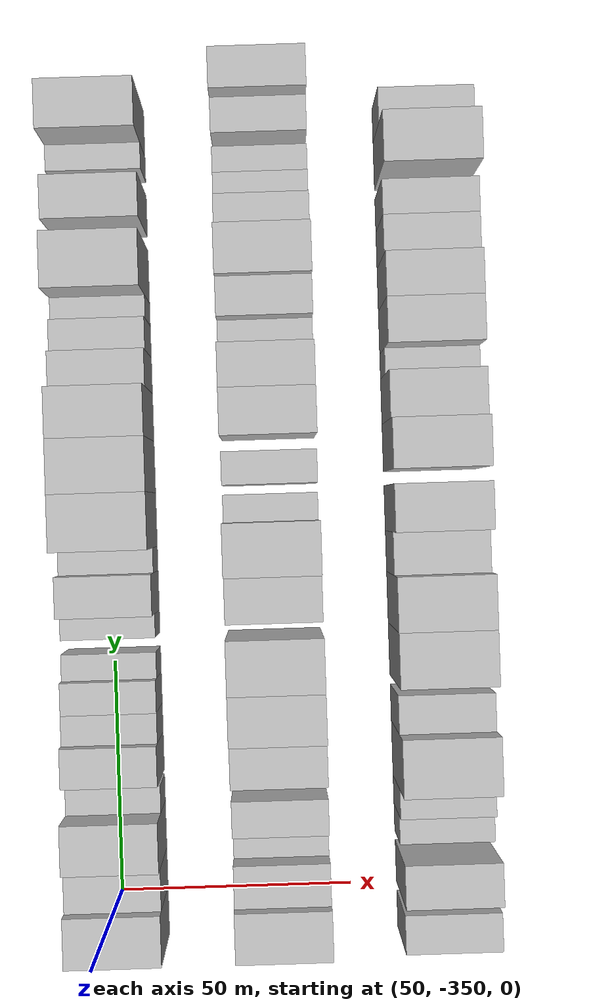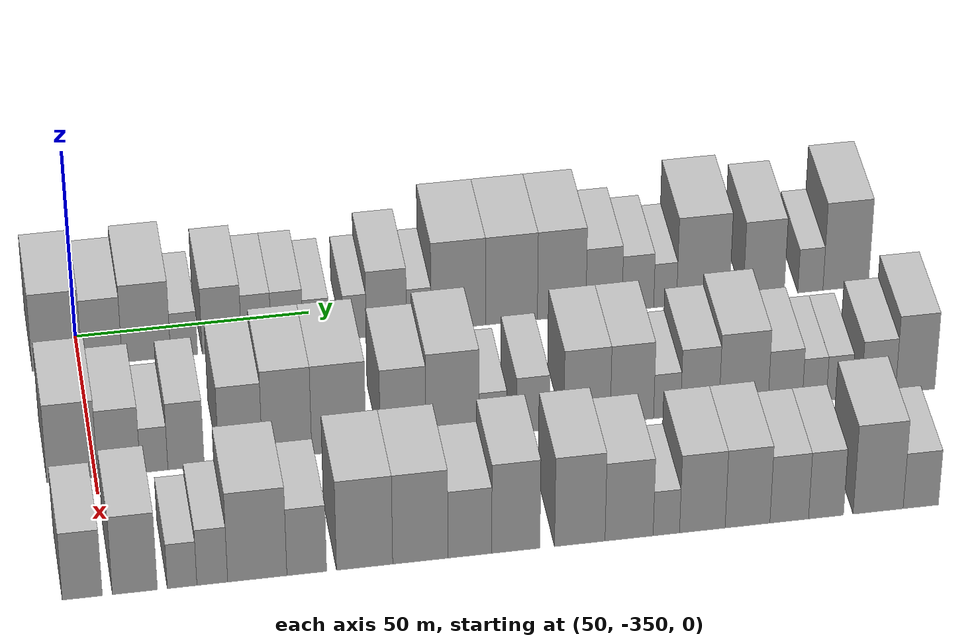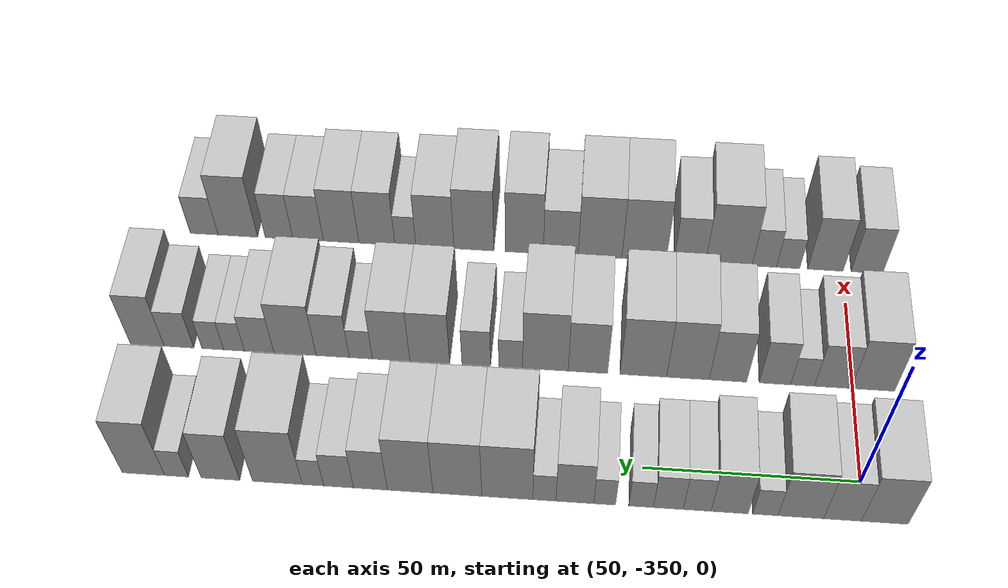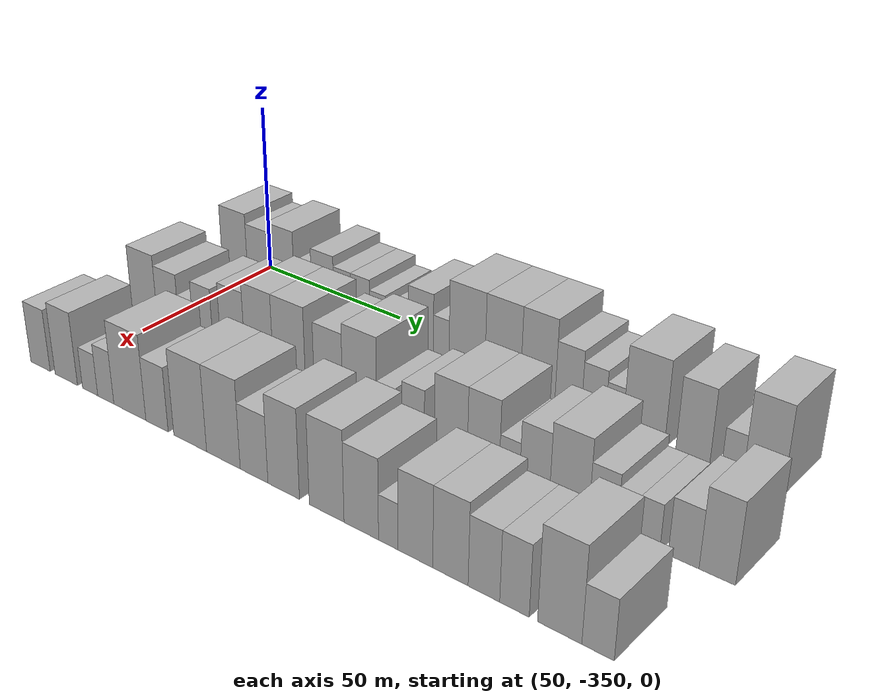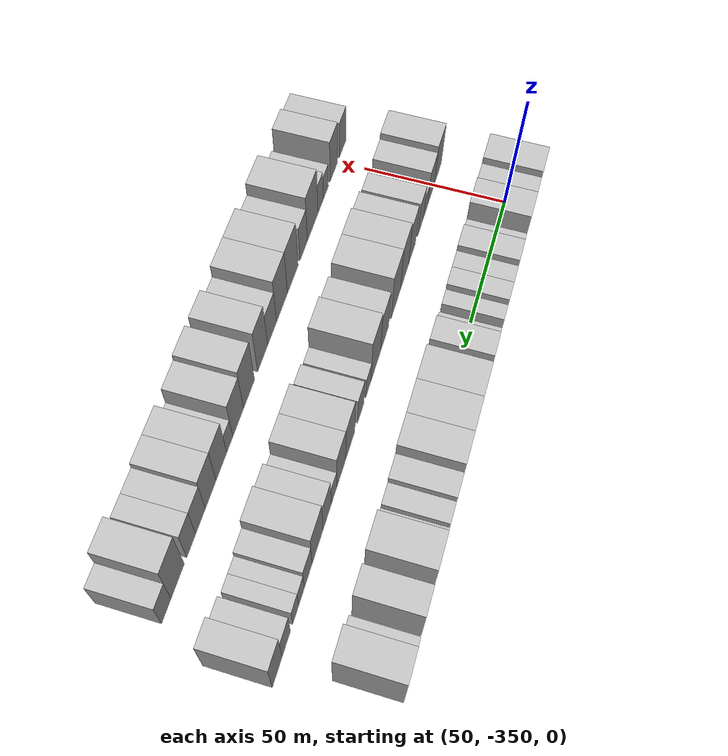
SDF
<sdf version="1.6">
 <world name="default">
  <model name="building_1">
   <static>1</static>
   <pose>50.0000 -354.7508 0 0.000000 0.000000 0.000000</pose>
   <link name="link">
    <pose>0 0 10.50 0 0 0</pose>
    <collision name="collision"><geometry><box><size>20.0000 10.4985 21.0000</size></box></geometry></collision>
    <visual name="visual">
     <cast_shadows>0</cast_shadows>
     <geometry><box><size>20.0000 10.4985 21.0000</size></box></geometry>
     <material>
      <script>
       <uri>model://HANNAS_wall/materials/scripts</uri>
       <uri>model://HANNAS_wall/materials/textures</uri>
       <name>vrc/HANNAS_wall</name>
      </script>
     </material>
    </visual>
   </link>
  </model>
  <model name="building_2">
   <static>1</static>
   <pose>50.0000 -345.2587 0 0.000000 0.000000 0.000000</pose>
   <link name="link">
    <pose>0 0 9.00 0 0 0</pose>
    <collision name="collision"><geometry><box><size>20.0000 8.4857 18.0000</size></box></geometry></collision>
    <visual name="visual">
     <cast_shadows>0</cast_shadows>
     <geometry><box><size>20.0000 8.4857 18.0000</size></box></geometry>
     <material>
      <script>
       <uri>model://HANNAS_wall/materials/scripts</uri>
       <uri>model://HANNAS_wall/materials/textures</uri>
       <name>vrc/HANNAS_wall</name>
      </script>
     </material>
    </visual>
   </link>
  </model>
  <model name="building_3">
   <static>1</static>
   <pose>50.0000 -335.8647 0 0.000000 0.000000 0.000000</pose>
   <link name="link">
    <pose>0 0 10.50 0 0 0</pose>
    <collision name="collision"><geometry><box><size>20.0000 10.3022 21.0000</size></box></geometry></collision>
    <visual name="visual">
     <cast_shadows>0</cast_shadows>
     <geometry><box><size>20.0000 10.3022 21.0000</size></box></geometry>
     <material>
      <script>
       <uri>model://HANNAS_wall/materials/scripts</uri>
       <uri>model://HANNAS_wall/materials/textures</uri>
       <name>vrc/HANNAS_wall</name>
      </script>
     </material>
    </visual>
   </link>
  </model>
  <model name="building_4">
   <static>1</static>
   <pose>50.0000 -327.8538 0 0.000000 0.000000 0.000000</pose>
   <link name="link">
    <pose>0 0 6.00 0 0 0</pose>
    <collision name="collision"><geometry><box><size>20.0000 5.7197 12.0000</size></box></geometry></collision>
    <visual name="visual">
     <cast_shadows>0</cast_shadows>
     <geometry><box><size>20.0000 5.7197 12.0000</size></box></geometry>
     <material>
      <script>
       <uri>model://HANNAS_wall/materials/scripts</uri>
       <uri>model://HANNAS_wall/materials/textures</uri>
       <name>vrc/HANNAS_wall</name>
      </script>
     </material>
    </visual>
   </link>
  </model>
  <model name="building_5">
   <static>1</static>
   <pose>50.0000 -319.8060 0 0.000000 0.000000 0.000000</pose>
   <link name="link">
    <pose>0 0 9.00 0 0 0</pose>
    <collision name="collision"><geometry><box><size>20.0000 8.3759 18.0000</size></box></geometry></collision>
    <visual name="visual">
     <cast_shadows>0</cast_shadows>
     <geometry><box><size>20.0000 8.3759 18.0000</size></box></geometry>
     <material>
      <script>
       <uri>model://HANNAS_wall/materials/scripts</uri>
       <uri>model://HANNAS_wall/materials/textures</uri>
       <name>vrc/HANNAS_wall</name>
      </script>
     </material>
    </visual>
   </link>
  </model>
  <model name="building_6">
   <static>1</static>
   <pose>50.0000 -312.4625 0 0.000000 0.000000 0.000000</pose>
   <link name="link">
    <pose>0 0 7.50 0 0 0</pose>
    <collision name="collision"><geometry><box><size>20.0000 6.3111 15.0000</size></box></geometry></collision>
    <visual name="visual">
     <cast_shadows>0</cast_shadows>
     <geometry><box><size>20.0000 6.3111 15.0000</size></box></geometry>
     <material>
      <script>
       <uri>model://HANNAS_wall/materials/scripts</uri>
       <uri>model://HANNAS_wall/materials/textures</uri>
       <name>vrc/HANNAS_wall</name>
      </script>
     </material>
    </visual>
   </link>
  </model>
  <model name="building_7">
   <static>1</static>
   <pose>50.0000 -305.9101 0 0.000000 0.000000 0.000000</pose>
   <link name="link">
    <pose>0 0 7.50 0 0 0</pose>
    <collision name="collision"><geometry><box><size>20.0000 6.7937 15.0000</size></box></geometry></collision>
    <visual name="visual">
     <cast_shadows>0</cast_shadows>
     <geometry><box><size>20.0000 6.7937 15.0000</size></box></geometry>
     <material>
      <script>
       <uri>model://HANNAS_wall/materials/scripts</uri>
       <uri>model://HANNAS_wall/materials/textures</uri>
       <name>vrc/HANNAS_wall</name>
      </script>
     </material>
    </visual>
   </link>
  </model>
  <model name="building_8">
   <static>1</static>
   <pose>50.0000 -299.7185 0 0.000000 0.000000 0.000000</pose>
   <link name="link">
    <pose>0 0 6.00 0 0 0</pose>
    <collision name="collision"><geometry><box><size>20.0000 5.5895 12.0000</size></box></geometry></collision>
    <visual name="visual">
     <cast_shadows>0</cast_shadows>
     <geometry><box><size>20.0000 5.5895 12.0000</size></box></geometry>
     <material>
      <script>
       <uri>model://HANNAS_wall/materials/scripts</uri>
       <uri>model://HANNAS_wall/materials/textures</uri>
       <name>vrc/HANNAS_wall</name>
      </script>
     </material>
    </visual>
   </link>
  </model>
  <model name="building_9">
   <static>1</static>
   <pose>50.0000 -291.4428 0 0.000000 0.000000 0.000000</pose>
   <link name="link">
    <pose>0 0 6.00 0 0 0</pose>
    <collision name="collision"><geometry><box><size>20.0000 4.9619 12.0000</size></box></geometry></collision>
    <visual name="visual">
     <cast_shadows>0</cast_shadows>
     <geometry><box><size>20.0000 4.9619 12.0000</size></box></geometry>
     <material>
      <script>
       <uri>model://HANNAS_wall/materials/scripts</uri>
       <uri>model://HANNAS_wall/materials/textures</uri>
       <name>vrc/HANNAS_wall</name>
      </script>
     </material>
    </visual>
   </link>
  </model>
  <model name="building_10">
   <static>1</static>
   <pose>50.0000 -284.6421 0 0.000000 0.000000 0.000000</pose>
   <link name="link">
    <pose>0 0 9.00 0 0 0</pose>
    <collision name="collision"><geometry><box><size>20.0000 8.6395 18.0000</size></box></geometry></collision>
    <visual name="visual">
     <cast_shadows>0</cast_shadows>
     <geometry><box><size>20.0000 8.6395 18.0000</size></box></geometry>
     <material>
      <script>
       <uri>model://HANNAS_wall/materials/scripts</uri>
       <uri>model://HANNAS_wall/materials/textures</uri>
       <name>vrc/HANNAS_wall</name>
      </script>
     </material>
    </visual>
   </link>
  </model>
  <model name="building_11">
   <static>1</static>
   <pose>50.0000 -277.6937 0 0.000000 0.000000 0.000000</pose>
   <link name="link">
    <pose>0 0 6.00 0 0 0</pose>
    <collision name="collision"><geometry><box><size>20.0000 5.2573 12.0000</size></box></geometry></collision>
    <visual name="visual">
     <cast_shadows>0</cast_shadows>
     <geometry><box><size>20.0000 5.2573 12.0000</size></box></geometry>
     <material>
      <script>
       <uri>model://HANNAS_wall/materials/scripts</uri>
       <uri>model://HANNAS_wall/materials/textures</uri>
       <name>vrc/HANNAS_wall</name>
      </script>
     </material>
    </visual>
   </link>
  </model>
  <model name="building_12">
   <static>1</static>
   <pose>50.0000 -269.2104 0 0.000000 0.000000 0.000000</pose>
   <link name="link">
    <pose>0 0 12.00 0 0 0</pose>
    <collision name="collision"><geometry><box><size>20.0000 11.7094 24.0000</size></box></geometry></collision>
    <visual name="visual">
     <cast_shadows>0</cast_shadows>
     <geometry><box><size>20.0000 11.7094 24.0000</size></box></geometry>
     <material>
      <script>
       <uri>model://HANNAS_wall/materials/scripts</uri>
       <uri>model://HANNAS_wall/materials/textures</uri>
       <name>vrc/HANNAS_wall</name>
      </script>
     </material>
    </visual>
   </link>
  </model>
  <model name="building_13">
   <static>1</static>
   <pose>50.0000 -257.7346 0 0.000000 0.000000 0.000000</pose>
   <link name="link">
    <pose>0 0 12.00 0 0 0</pose>
    <collision name="collision"><geometry><box><size>20.0000 11.2421 24.0000</size></box></geometry></collision>
    <visual name="visual">
     <cast_shadows>0</cast_shadows>
     <geometry><box><size>20.0000 11.2421 24.0000</size></box></geometry>
     <material>
      <script>
       <uri>model://HANNAS_wall/materials/scripts</uri>
       <uri>model://HANNAS_wall/materials/textures</uri>
       <name>vrc/HANNAS_wall</name>
      </script>
     </material>
    </visual>
   </link>
  </model>
  <model name="building_14">
   <static>1</static>
   <pose>50.0000 -246.8696 0 0.000000 0.000000 0.000000</pose>
   <link name="link">
    <pose>0 0 12.00 0 0 0</pose>
    <collision name="collision"><geometry><box><size>20.0000 10.4880 24.0000</size></box></geometry></collision>
    <visual name="visual">
     <cast_shadows>0</cast_shadows>
     <geometry><box><size>20.0000 10.4880 24.0000</size></box></geometry>
     <material>
      <script>
       <uri>model://HANNAS_wall/materials/scripts</uri>
       <uri>model://HANNAS_wall/materials/textures</uri>
       <name>vrc/HANNAS_wall</name>
      </script>
     </material>
    </visual>
   </link>
  </model>
  <model name="building_15">
   <static>1</static>
   <pose>50.0000 -237.7019 0 0.000000 0.000000 0.000000</pose>
   <link name="link">
    <pose>0 0 9.00 0 0 0</pose>
    <collision name="collision"><geometry><box><size>20.0000 7.8472 18.0000</size></box></geometry></collision>
    <visual name="visual">
     <cast_shadows>0</cast_shadows>
     <geometry><box><size>20.0000 7.8472 18.0000</size></box></geometry>
     <material>
      <script>
       <uri>model://HANNAS_wall/materials/scripts</uri>
       <uri>model://HANNAS_wall/materials/textures</uri>
       <name>vrc/HANNAS_wall</name>
      </script>
     </material>
    </visual>
   </link>
  </model>
  <model name="building_16">
   <static>1</static>
   <pose>50.0000 -230.3300 0 0.000000 0.000000 0.000000</pose>
   <link name="link">
    <pose>0 0 7.50 0 0 0</pose>
    <collision name="collision"><geometry><box><size>20.0000 6.8967 15.0000</size></box></geometry></collision>
    <visual name="visual">
     <cast_shadows>0</cast_shadows>
     <geometry><box><size>20.0000 6.8967 15.0000</size></box></geometry>
     <material>
      <script>
       <uri>model://HANNAS_wall/materials/scripts</uri>
       <uri>model://HANNAS_wall/materials/textures</uri>
       <name>vrc/HANNAS_wall</name>
      </script>
     </material>
    </visual>
   </link>
  </model>
  <model name="building_17">
   <static>1</static>
   <pose>50.0000 -224.3962 0 0.000000 0.000000 0.000000</pose>
   <link name="link">
    <pose>0 0 6.00 0 0 0</pose>
    <collision name="collision"><geometry><box><size>20.0000 4.9710 12.0000</size></box></geometry></collision>
    <visual name="visual">
     <cast_shadows>0</cast_shadows>
     <geometry><box><size>20.0000 4.9710 12.0000</size></box></geometry>
     <material>
      <script>
       <uri>model://HANNAS_wall/materials/scripts</uri>
       <uri>model://HANNAS_wall/materials/textures</uri>
       <name>vrc/HANNAS_wall</name>
      </script>
     </material>
    </visual>
   </link>
  </model>
  <model name="building_18">
   <static>1</static>
   <pose>50.0000 -216.1369 0 0.000000 0.000000 0.000000</pose>
   <link name="link">
    <pose>0 0 12.00 0 0 0</pose>
    <collision name="collision"><geometry><box><size>20.0000 11.5476 24.0000</size></box></geometry></collision>
    <visual name="visual">
     <cast_shadows>0</cast_shadows>
     <geometry><box><size>20.0000 11.5476 24.0000</size></box></geometry>
     <material>
      <script>
       <uri>model://HANNAS_wall/materials/scripts</uri>
       <uri>model://HANNAS_wall/materials/textures</uri>
       <name>vrc/HANNAS_wall</name>
      </script>
     </material>
    </visual>
   </link>
  </model>
  <model name="building_19">
   <static>1</static>
   <pose>50.0000 -202.8741 0 0.000000 0.000000 0.000000</pose>
   <link name="link">
    <pose>0 0 10.50 0 0 0</pose>
    <collision name="collision"><geometry><box><size>20.0000 8.9781 21.0000</size></box></geometry></collision>
    <visual name="visual">
     <cast_shadows>0</cast_shadows>
     <geometry><box><size>20.0000 8.9781 21.0000</size></box></geometry>
     <material>
      <script>
       <uri>model://HANNAS_wall/materials/scripts</uri>
       <uri>model://HANNAS_wall/materials/textures</uri>
       <name>vrc/HANNAS_wall</name>
      </script>
     </material>
    </visual>
   </link>
  </model>
  <model name="building_20">
   <static>1</static>
   <pose>50.0000 -192.6304 0 0.000000 0.000000 0.000000</pose>
   <link name="link">
    <pose>0 0 6.00 0 0 0</pose>
    <collision name="collision"><geometry><box><size>20.0000 5.5092 12.0000</size></box></geometry></collision>
    <visual name="visual">
     <cast_shadows>0</cast_shadows>
     <geometry><box><size>20.0000 5.5092 12.0000</size></box></geometry>
     <material>
      <script>
       <uri>model://HANNAS_wall/materials/scripts</uri>
       <uri>model://HANNAS_wall/materials/textures</uri>
       <name>vrc/HANNAS_wall</name>
      </script>
     </material>
    </visual>
   </link>
  </model>
  <model name="building_21">
   <static>1</static>
   <pose>50.0000 -184.8800 0 0.000000 0.000000 0.000000</pose>
   <link name="link">
    <pose>0 0 12.00 0 0 0</pose>
    <collision name="collision"><geometry><box><size>20.0000 9.9916 24.0000</size></box></geometry></collision>
    <visual name="visual">
     <cast_shadows>0</cast_shadows>
     <geometry><box><size>20.0000 9.9916 24.0000</size></box></geometry>
     <material>
      <script>
       <uri>model://HANNAS_wall/materials/scripts</uri>
       <uri>model://HANNAS_wall/materials/textures</uri>
       <name>vrc/HANNAS_wall</name>
      </script>
     </material>
    </visual>
   </link>
  </model>
  <model name="building_86">
   <static>1</static>
   <pose>85.0000 -354.7862 0 0.000000 0.000000 0.000000</pose>
   <link name="link">
    <pose>0 0 10.50 0 0 0</pose>
    <collision name="collision"><geometry><box><size>20.0000 10.4276 21.0000</size></box></geometry></collision>
    <visual name="visual">
     <cast_shadows>0</cast_shadows>
     <geometry><box><size>20.0000 10.4276 21.0000</size></box></geometry>
     <material>
      <script>
       <uri>model://HANNAS_wall/materials/scripts</uri>
       <uri>model://HANNAS_wall/materials/textures</uri>
       <name>vrc/HANNAS_wall</name>
      </script>
     </material>
    </visual>
   </link>
  </model>
  <model name="building_87">
   <static>1</static>
   <pose>85.0000 -345.1658 0 0.000000 0.000000 0.000000</pose>
   <link name="link">
    <pose>0 0 9.00 0 0 0</pose>
    <collision name="collision"><geometry><box><size>20.0000 8.8132 18.0000</size></box></geometry></collision>
    <visual name="visual">
     <cast_shadows>0</cast_shadows>
     <geometry><box><size>20.0000 8.8132 18.0000</size></box></geometry>
     <material>
      <script>
       <uri>model://HANNAS_wall/materials/scripts</uri>
       <uri>model://HANNAS_wall/materials/textures</uri>
       <name>vrc/HANNAS_wall</name>
      </script>
     </material>
    </visual>
   </link>
  </model>
  <model name="building_88">
   <static>1</static>
   <pose>85.0000 -337.9072 0 0.000000 0.000000 0.000000</pose>
   <link name="link">
    <pose>0 0 6.00 0 0 0</pose>
    <collision name="collision"><geometry><box><size>20.0000 5.7042 12.0000</size></box></geometry></collision>
    <visual name="visual">
     <cast_shadows>0</cast_shadows>
     <geometry><box><size>20.0000 5.7042 12.0000</size></box></geometry>
     <material>
      <script>
       <uri>model://HANNAS_wall/materials/scripts</uri>
       <uri>model://HANNAS_wall/materials/textures</uri>
       <name>vrc/HANNAS_wall</name>
      </script>
     </material>
    </visual>
   </link>
  </model>
  <model name="building_89">
   <static>1</static>
   <pose>85.0000 -331.2954 0 0.000000 0.000000 0.000000</pose>
   <link name="link">
    <pose>0 0 9.00 0 0 0</pose>
    <collision name="collision"><geometry><box><size>20.0000 7.5193 18.0000</size></box></geometry></collision>
    <visual name="visual">
     <cast_shadows>0</cast_shadows>
     <geometry><box><size>20.0000 7.5193 18.0000</size></box></geometry>
     <material>
      <script>
       <uri>model://HANNAS_wall/materials/scripts</uri>
       <uri>model://HANNAS_wall/materials/textures</uri>
       <name>vrc/HANNAS_wall</name>
      </script>
     </material>
    </visual>
   </link>
  </model>
  <model name="building_90">
   <static>1</static>
   <pose>85.0000 -320.0088 0 0.000000 0.000000 0.000000</pose>
   <link name="link">
    <pose>0 0 10.50 0 0 0</pose>
    <collision name="collision"><geometry><box><size>20.0000 9.0539 21.0000</size></box></geometry></collision>
    <visual name="visual">
     <cast_shadows>0</cast_shadows>
     <geometry><box><size>20.0000 9.0539 21.0000</size></box></geometry>
     <material>
      <script>
       <uri>model://HANNAS_wall/materials/scripts</uri>
       <uri>model://HANNAS_wall/materials/textures</uri>
       <name>vrc/HANNAS_wall</name>
      </script>
     </material>
    </visual>
   </link>
  </model>
  <model name="building_91">
   <static>1</static>
   <pose>85.0000 -310.3484 0 0.000000 0.000000 0.000000</pose>
   <link name="link">
    <pose>0 0 12.00 0 0 0</pose>
    <collision name="collision"><geometry><box><size>20.0000 10.2668 24.0000</size></box></geometry></collision>
    <visual name="visual">
     <cast_shadows>0</cast_shadows>
     <geometry><box><size>20.0000 10.2668 24.0000</size></box></geometry>
     <material>
      <script>
       <uri>model://HANNAS_wall/materials/scripts</uri>
       <uri>model://HANNAS_wall/materials/textures</uri>
       <name>vrc/HANNAS_wall</name>
      </script>
     </material>
    </visual>
   </link>
  </model>
  <model name="building_92">
   <static>1</static>
   <pose>85.0000 -299.5706 0 0.000000 0.000000 0.000000</pose>
   <link name="link">
    <pose>0 0 12.00 0 0 0</pose>
    <collision name="collision"><geometry><box><size>20.0000 11.2888 24.0000</size></box></geometry></collision>
    <visual name="visual">
     <cast_shadows>0</cast_shadows>
     <geometry><box><size>20.0000 11.2888 24.0000</size></box></geometry>
     <material>
      <script>
       <uri>model://HANNAS_wall/materials/scripts</uri>
       <uri>model://HANNAS_wall/materials/textures</uri>
       <name>vrc/HANNAS_wall</name>
      </script>
     </material>
    </visual>
   </link>
  </model>
  <model name="building_93">
   <static>1</static>
   <pose>85.0000 -286.1493 0 0.000000 0.000000 0.000000</pose>
   <link name="link">
    <pose>0 0 10.50 0 0 0</pose>
    <collision name="collision"><geometry><box><size>20.0000 9.5538 21.0000</size></box></geometry></collision>
    <visual name="visual">
     <cast_shadows>0</cast_shadows>
     <geometry><box><size>20.0000 9.5538 21.0000</size></box></geometry>
     <material>
      <script>
       <uri>model://HANNAS_wall/materials/scripts</uri>
       <uri>model://HANNAS_wall/materials/textures</uri>
       <name>vrc/HANNAS_wall</name>
      </script>
     </material>
    </visual>
   </link>
  </model>
  <model name="building_94">
   <static>1</static>
   <pose>85.0000 -275.8280 0 0.000000 0.000000 0.000000</pose>
   <link name="link">
    <pose>0 0 12.00 0 0 0</pose>
    <collision name="collision"><geometry><box><size>20.0000 11.0887 24.0000</size></box></geometry></collision>
    <visual name="visual">
     <cast_shadows>0</cast_shadows>
     <geometry><box><size>20.0000 11.0887 24.0000</size></box></geometry>
     <material>
      <script>
       <uri>model://HANNAS_wall/materials/scripts</uri>
       <uri>model://HANNAS_wall/materials/textures</uri>
       <name>vrc/HANNAS_wall</name>
      </script>
     </material>
    </visual>
   </link>
  </model>
  <model name="building_95">
   <static>1</static>
   <pose>85.0000 -267.3637 0 0.000000 0.000000 0.000000</pose>
   <link name="link">
    <pose>0 0 6.00 0 0 0</pose>
    <collision name="collision"><geometry><box><size>20.0000 5.8399 12.0000</size></box></geometry></collision>
    <visual name="visual">
     <cast_shadows>0</cast_shadows>
     <geometry><box><size>20.0000 5.8399 12.0000</size></box></geometry>
     <material>
      <script>
       <uri>model://HANNAS_wall/materials/scripts</uri>
       <uri>model://HANNAS_wall/materials/textures</uri>
       <name>vrc/HANNAS_wall</name>
      </script>
     </material>
    </visual>
   </link>
  </model>
  <model name="building_96">
   <static>1</static>
   <pose>85.0000 -258.9488 0 0.000000 0.000000 0.000000</pose>
   <link name="link">
    <pose>0 0 7.50 0 0 0</pose>
    <collision name="collision"><geometry><box><size>20.0000 6.9898 15.0000</size></box></geometry></collision>
    <visual name="visual">
     <cast_shadows>0</cast_shadows>
     <geometry><box><size>20.0000 6.9898 15.0000</size></box></geometry>
     <material>
      <script>
       <uri>model://HANNAS_wall/materials/scripts</uri>
       <uri>model://HANNAS_wall/materials/textures</uri>
       <name>vrc/HANNAS_wall</name>
      </script>
     </material>
    </visual>
   </link>
  </model>
  <model name="building_97">
   <static>1</static>
   <pose>85.0000 -247.5538 0 0.000000 0.000000 0.000000</pose>
   <link name="link">
    <pose>0 0 10.50 0 0 0</pose>
    <collision name="collision"><geometry><box><size>20.0000 9.8003 21.0000</size></box></geometry></collision>
    <visual name="visual">
     <cast_shadows>0</cast_shadows>
     <geometry><box><size>20.0000 9.8003 21.0000</size></box></geometry>
     <material>
      <script>
       <uri>model://HANNAS_wall/materials/scripts</uri>
       <uri>model://HANNAS_wall/materials/textures</uri>
       <name>vrc/HANNAS_wall</name>
      </script>
     </material>
    </visual>
   </link>
  </model>
  <model name="building_98">
   <static>1</static>
   <pose>85.0000 -238.0629 0 0.000000 0.000000 0.000000</pose>
   <link name="link">
    <pose>0 0 10.50 0 0 0</pose>
    <collision name="collision"><geometry><box><size>20.0000 9.1816 21.0000</size></box></geometry></collision>
    <visual name="visual">
     <cast_shadows>0</cast_shadows>
     <geometry><box><size>20.0000 9.1816 21.0000</size></box></geometry>
     <material>
      <script>
       <uri>model://HANNAS_wall/materials/scripts</uri>
       <uri>model://HANNAS_wall/materials/textures</uri>
       <name>vrc/HANNAS_wall</name>
      </script>
     </material>
    </visual>
   </link>
  </model>
  <model name="building_99">
   <static>1</static>
   <pose>85.0000 -230.6223 0 0.000000 0.000000 0.000000</pose>
   <link name="link">
    <pose>0 0 6.00 0 0 0</pose>
    <collision name="collision"><geometry><box><size>20.0000 5.6995 12.0000</size></box></geometry></collision>
    <visual name="visual">
     <cast_shadows>0</cast_shadows>
     <geometry><box><size>20.0000 5.6995 12.0000</size></box></geometry>
     <material>
      <script>
       <uri>model://HANNAS_wall/materials/scripts</uri>
       <uri>model://HANNAS_wall/materials/textures</uri>
       <name>vrc/HANNAS_wall</name>
      </script>
     </material>
    </visual>
   </link>
  </model>
  <model name="building_100">
   <static>1</static>
   <pose>85.0000 -223.6833 0 0.000000 0.000000 0.000000</pose>
   <link name="link">
    <pose>0 0 9.00 0 0 0</pose>
    <collision name="collision"><geometry><box><size>20.0000 8.1786 18.0000</size></box></geometry></collision>
    <visual name="visual">
     <cast_shadows>0</cast_shadows>
     <geometry><box><size>20.0000 8.1786 18.0000</size></box></geometry>
     <material>
      <script>
       <uri>model://HANNAS_wall/materials/scripts</uri>
       <uri>model://HANNAS_wall/materials/textures</uri>
       <name>vrc/HANNAS_wall</name>
      </script>
     </material>
    </visual>
   </link>
  </model>
  <model name="building_101">
   <static>1</static>
   <pose>85.0000 -214.3770 0 0.000000 0.000000 0.000000</pose>
   <link name="link">
    <pose>0 0 10.50 0 0 0</pose>
    <collision name="collision"><geometry><box><size>20.0000 10.4340 21.0000</size></box></geometry></collision>
    <visual name="visual">
     <cast_shadows>0</cast_shadows>
     <geometry><box><size>20.0000 10.4340 21.0000</size></box></geometry>
     <material>
      <script>
       <uri>model://HANNAS_wall/materials/scripts</uri>
       <uri>model://HANNAS_wall/materials/textures</uri>
       <name>vrc/HANNAS_wall</name>
      </script>
     </material>
    </visual>
   </link>
  </model>
  <model name="building_102">
   <static>1</static>
   <pose>85.0000 -205.5114 0 0.000000 0.000000 0.000000</pose>
   <link name="link">
    <pose>0 0 7.50 0 0 0</pose>
    <collision name="collision"><geometry><box><size>20.0000 7.2973 15.0000</size></box></geometry></collision>
    <visual name="visual">
     <cast_shadows>0</cast_shadows>
     <geometry><box><size>20.0000 7.2973 15.0000</size></box></geometry>
     <material>
      <script>
       <uri>model://HANNAS_wall/materials/scripts</uri>
       <uri>model://HANNAS_wall/materials/textures</uri>
       <name>vrc/HANNAS_wall</name>
      </script>
     </material>
    </visual>
   </link>
  </model>
  <model name="building_103">
   <static>1</static>
   <pose>85.0000 -199.2779 0 0.000000 0.000000 0.000000</pose>
   <link name="link">
    <pose>0 0 6.00 0 0 0</pose>
    <collision name="collision"><geometry><box><size>20.0000 5.1698 12.0000</size></box></geometry></collision>
    <visual name="visual">
     <cast_shadows>0</cast_shadows>
     <geometry><box><size>20.0000 5.1698 12.0000</size></box></geometry>
     <material>
      <script>
       <uri>model://HANNAS_wall/materials/scripts</uri>
       <uri>model://HANNAS_wall/materials/textures</uri>
       <name>vrc/HANNAS_wall</name>
      </script>
     </material>
    </visual>
   </link>
  </model>
  <model name="building_104">
   <static>1</static>
   <pose>85.0000 -193.9844 0 0.000000 0.000000 0.000000</pose>
   <link name="link">
    <pose>0 0 6.00 0 0 0</pose>
    <collision name="collision"><geometry><box><size>20.0000 5.4171 12.0000</size></box></geometry></collision>
    <visual name="visual">
     <cast_shadows>0</cast_shadows>
     <geometry><box><size>20.0000 5.4171 12.0000</size></box></geometry>
     <material>
      <script>
       <uri>model://HANNAS_wall/materials/scripts</uri>
       <uri>model://HANNAS_wall/materials/textures</uri>
       <name>vrc/HANNAS_wall</name>
      </script>
     </material>
    </visual>
   </link>
  </model>
  <model name="building_105">
   <static>1</static>
   <pose>85.0000 -185.5967 0 0.000000 0.000000 0.000000</pose>
   <link name="link">
    <pose>0 0 7.50 0 0 0</pose>
    <collision name="collision"><geometry><box><size>20.0000 7.3583 15.0000</size></box></geometry></collision>
    <visual name="visual">
     <cast_shadows>0</cast_shadows>
     <geometry><box><size>20.0000 7.3583 15.0000</size></box></geometry>
     <material>
      <script>
       <uri>model://HANNAS_wall/materials/scripts</uri>
       <uri>model://HANNAS_wall/materials/textures</uri>
       <name>vrc/HANNAS_wall</name>
      </script>
     </material>
    </visual>
   </link>
  </model>
  <model name="building_106">
   <static>1</static>
   <pose>85.0000 -177.6954 0 0.000000 0.000000 0.000000</pose>
   <link name="link">
    <pose>0 0 10.50 0 0 0</pose>
    <collision name="collision"><geometry><box><size>20.0000 8.4442 21.0000</size></box></geometry></collision>
    <visual name="visual">
     <cast_shadows>0</cast_shadows>
     <geometry><box><size>20.0000 8.4442 21.0000</size></box></geometry>
     <material>
      <script>
       <uri>model://HANNAS_wall/materials/scripts</uri>
       <uri>model://HANNAS_wall/materials/textures</uri>
       <name>vrc/HANNAS_wall</name>
      </script>
     </material>
    </visual>
   </link>
  </model>
  <model name="building_165">
   <static>1</static>
   <pose>120.0000 -355.9833 0 0.000000 0.000000 0.000000</pose>
   <link name="link">
    <pose>0 0 9.00 0 0 0</pose>
    <collision name="collision"><geometry><box><size>20.0000 8.0334 18.0000</size></box></geometry></collision>
    <visual name="visual">
     <cast_shadows>0</cast_shadows>
     <geometry><box><size>20.0000 8.0334 18.0000</size></box></geometry>
     <material>
      <script>
       <uri>model://HANNAS_wall/materials/scripts</uri>
       <uri>model://HANNAS_wall/materials/textures</uri>
       <name>vrc/HANNAS_wall</name>
      </script>
     </material>
    </visual>
   </link>
  </model>
  <model name="building_166">
   <static>1</static>
   <pose>120.0000 -345.4485 0 0.000000 0.000000 0.000000</pose>
   <link name="link">
    <pose>0 0 10.50 0 0 0</pose>
    <collision name="collision"><geometry><box><size>20.0000 9.0362 21.0000</size></box></geometry></collision>
    <visual name="visual">
     <cast_shadows>0</cast_shadows>
     <geometry><box><size>20.0000 9.0362 21.0000</size></box></geometry>
     <material>
      <script>
       <uri>model://HANNAS_wall/materials/scripts</uri>
       <uri>model://HANNAS_wall/materials/textures</uri>
       <name>vrc/HANNAS_wall</name>
      </script>
     </material>
    </visual>
   </link>
  </model>
  <model name="building_167">
   <static>1</static>
   <pose>120.0000 -335.9588 0 0.000000 0.000000 0.000000</pose>
   <link name="link">
    <pose>0 0 6.00 0 0 0</pose>
    <collision name="collision"><geometry><box><size>20.0000 5.9433 12.0000</size></box></geometry></collision>
    <visual name="visual">
     <cast_shadows>0</cast_shadows>
     <geometry><box><size>20.0000 5.9433 12.0000</size></box></geometry>
     <material>
      <script>
       <uri>model://HANNAS_wall/materials/scripts</uri>
       <uri>model://HANNAS_wall/materials/textures</uri>
       <name>vrc/HANNAS_wall</name>
      </script>
     </material>
    </visual>
   </link>
  </model>
  <model name="building_168">
   <static>1</static>
   <pose>120.0000 -329.8889 0 0.000000 0.000000 0.000000</pose>
   <link name="link">
    <pose>0 0 7.50 0 0 0</pose>
    <collision name="collision"><geometry><box><size>20.0000 6.1964 15.0000</size></box></geometry></collision>
    <visual name="visual">
     <cast_shadows>0</cast_shadows>
     <geometry><box><size>20.0000 6.1964 15.0000</size></box></geometry>
     <material>
      <script>
       <uri>model://HANNAS_wall/materials/scripts</uri>
       <uri>model://HANNAS_wall/materials/textures</uri>
       <name>vrc/HANNAS_wall</name>
      </script>
     </material>
    </visual>
   </link>
  </model>
  <model name="building_169">
   <static>1</static>
   <pose>120.0000 -320.8136 0 0.000000 0.000000 0.000000</pose>
   <link name="link">
    <pose>0 0 12.00 0 0 0</pose>
    <collision name="collision"><geometry><box><size>20.0000 11.9543 24.0000</size></box></geometry></collision>
    <visual name="visual">
     <cast_shadows>0</cast_shadows>
     <geometry><box><size>20.0000 11.9543 24.0000</size></box></geometry>
     <material>
      <script>
       <uri>model://HANNAS_wall/materials/scripts</uri>
       <uri>model://HANNAS_wall/materials/textures</uri>
       <name>vrc/HANNAS_wall</name>
      </script>
     </material>
    </visual>
   </link>
  </model>
  <model name="building_170">
   <static>1</static>
   <pose>120.0000 -310.8181 0 0.000000 0.000000 0.000000</pose>
   <link name="link">
    <pose>0 0 9.00 0 0 0</pose>
    <collision name="collision"><geometry><box><size>20.0000 8.0365 18.0000</size></box></geometry></collision>
    <visual name="visual">
     <cast_shadows>0</cast_shadows>
     <geometry><box><size>20.0000 8.0365 18.0000</size></box></geometry>
     <material>
      <script>
       <uri>model://HANNAS_wall/materials/scripts</uri>
       <uri>model://HANNAS_wall/materials/textures</uri>
       <name>vrc/HANNAS_wall</name>
      </script>
     </material>
    </visual>
   </link>
  </model>
  <model name="building_171">
   <static>1</static>
   <pose>120.0000 -299.0955 0 0.000000 0.000000 0.000000</pose>
   <link name="link">
    <pose>0 0 12.00 0 0 0</pose>
    <collision name="collision"><geometry><box><size>20.0000 11.4087 24.0000</size></box></geometry></collision>
    <visual name="visual">
     <cast_shadows>0</cast_shadows>
     <geometry><box><size>20.0000 11.4087 24.0000</size></box></geometry>
     <material>
      <script>
       <uri>model://HANNAS_wall/materials/scripts</uri>
       <uri>model://HANNAS_wall/materials/textures</uri>
       <name>vrc/HANNAS_wall</name>
      </script>
     </material>
    </visual>
   </link>
  </model>
  <model name="building_172">
   <static>1</static>
   <pose>120.0000 -287.7710 0 0.000000 0.000000 0.000000</pose>
   <link name="link">
    <pose>0 0 12.00 0 0 0</pose>
    <collision name="collision"><geometry><box><size>20.0000 11.2402 24.0000</size></box></geometry></collision>
    <visual name="visual">
     <cast_shadows>0</cast_shadows>
     <geometry><box><size>20.0000 11.2402 24.0000</size></box></geometry>
     <material>
      <script>
       <uri>model://HANNAS_wall/materials/scripts</uri>
       <uri>model://HANNAS_wall/materials/textures</uri>
       <name>vrc/HANNAS_wall</name>
      </script>
     </material>
    </visual>
   </link>
  </model>
  <model name="building_173">
   <static>1</static>
   <pose>120.0000 -277.6804 0 0.000000 0.000000 0.000000</pose>
   <link name="link">
    <pose>0 0 9.00 0 0 0</pose>
    <collision name="collision"><geometry><box><size>20.0000 8.9411 18.0000</size></box></geometry></collision>
    <visual name="visual">
     <cast_shadows>0</cast_shadows>
     <geometry><box><size>20.0000 8.9411 18.0000</size></box></geometry>
     <material>
      <script>
       <uri>model://HANNAS_wall/materials/scripts</uri>
       <uri>model://HANNAS_wall/materials/textures</uri>
       <name>vrc/HANNAS_wall</name>
      </script>
     </material>
    </visual>
   </link>
  </model>
  <model name="building_174">
   <static>1</static>
   <pose>120.0000 -268.2892 0 0.000000 0.000000 0.000000</pose>
   <link name="link">
    <pose>0 0 12.00 0 0 0</pose>
    <collision name="collision"><geometry><box><size>20.0000 9.8413 24.0000</size></box></geometry></collision>
    <visual name="visual">
     <cast_shadows>0</cast_shadows>
     <geometry><box><size>20.0000 9.8413 24.0000</size></box></geometry>
     <material>
      <script>
       <uri>model://HANNAS_wall/materials/scripts</uri>
       <uri>model://HANNAS_wall/materials/textures</uri>
       <name>vrc/HANNAS_wall</name>
      </script>
     </material>
    </visual>
   </link>
  </model>
  <model name="building_175">
   <static>1</static>
   <pose>120.0000 -255.1918 0 0.000000 0.000000 0.000000</pose>
   <link name="link">
    <pose>0 0 12.00 0 0 0</pose>
    <collision name="collision"><geometry><box><size>20.0000 10.3536 24.0000</size></box></geometry></collision>
    <visual name="visual">
     <cast_shadows>0</cast_shadows>
     <geometry><box><size>20.0000 10.3536 24.0000</size></box></geometry>
     <material>
      <script>
       <uri>model://HANNAS_wall/materials/scripts</uri>
       <uri>model://HANNAS_wall/materials/textures</uri>
       <name>vrc/HANNAS_wall</name>
      </script>
     </material>
    </visual>
   </link>
  </model>
  <model name="building_176">
   <static>1</static>
   <pose>120.0000 -245.0659 0 0.000000 0.000000 0.000000</pose>
   <link name="link">
    <pose>0 0 10.50 0 0 0</pose>
    <collision name="collision"><geometry><box><size>20.0000 9.8980 21.0000</size></box></geometry></collision>
    <visual name="visual">
     <cast_shadows>0</cast_shadows>
     <geometry><box><size>20.0000 9.8980 21.0000</size></box></geometry>
     <material>
      <script>
       <uri>model://HANNAS_wall/materials/scripts</uri>
       <uri>model://HANNAS_wall/materials/textures</uri>
       <name>vrc/HANNAS_wall</name>
      </script>
     </material>
    </visual>
   </link>
  </model>
  <model name="building_177">
   <static>1</static>
   <pose>120.0000 -237.3979 0 0.000000 0.000000 0.000000</pose>
   <link name="link">
    <pose>0 0 6.00 0 0 0</pose>
    <collision name="collision"><geometry><box><size>20.0000 5.4380 12.0000</size></box></geometry></collision>
    <visual name="visual">
     <cast_shadows>0</cast_shadows>
     <geometry><box><size>20.0000 5.4380 12.0000</size></box></geometry>
     <material>
      <script>
       <uri>model://HANNAS_wall/materials/scripts</uri>
       <uri>model://HANNAS_wall/materials/textures</uri>
       <name>vrc/HANNAS_wall</name>
      </script>
     </material>
    </visual>
   </link>
  </model>
  <model name="building_178">
   <static>1</static>
   <pose>120.0000 -229.9687 0 0.000000 0.000000 0.000000</pose>
   <link name="link">
    <pose>0 0 10.50 0 0 0</pose>
    <collision name="collision"><geometry><box><size>20.0000 9.4204 21.0000</size></box></geometry></collision>
    <visual name="visual">
     <cast_shadows>0</cast_shadows>
     <geometry><box><size>20.0000 9.4204 21.0000</size></box></geometry>
     <material>
      <script>
       <uri>model://HANNAS_wall/materials/scripts</uri>
       <uri>model://HANNAS_wall/materials/textures</uri>
       <name>vrc/HANNAS_wall</name>
      </script>
     </material>
    </visual>
   </link>
  </model>
  <model name="building_179">
   <static>1</static>
   <pose>120.0000 -220.6254 0 0.000000 0.000000 0.000000</pose>
   <link name="link">
    <pose>0 0 10.50 0 0 0</pose>
    <collision name="collision"><geometry><box><size>20.0000 9.2663 21.0000</size></box></geometry></collision>
    <visual name="visual">
     <cast_shadows>0</cast_shadows>
     <geometry><box><size>20.0000 9.2663 21.0000</size></box></geometry>
     <material>
      <script>
       <uri>model://HANNAS_wall/materials/scripts</uri>
       <uri>model://HANNAS_wall/materials/textures</uri>
       <name>vrc/HANNAS_wall</name>
      </script>
     </material>
    </visual>
   </link>
  </model>
  <model name="building_180">
   <static>1</static>
   <pose>120.0000 -211.9845 0 0.000000 0.000000 0.000000</pose>
   <link name="link">
    <pose>0 0 9.00 0 0 0</pose>
    <collision name="collision"><geometry><box><size>20.0000 8.0154 18.0000</size></box></geometry></collision>
    <visual name="visual">
     <cast_shadows>0</cast_shadows>
     <geometry><box><size>20.0000 8.0154 18.0000</size></box></geometry>
     <material>
      <script>
       <uri>model://HANNAS_wall/materials/scripts</uri>
       <uri>model://HANNAS_wall/materials/textures</uri>
       <name>vrc/HANNAS_wall</name>
      </script>
     </material>
    </visual>
   </link>
  </model>
  <model name="building_181">
   <static>1</static>
   <pose>120.0000 -204.3454 0 0.000000 0.000000 0.000000</pose>
   <link name="link">
    <pose>0 0 9.00 0 0 0</pose>
    <collision name="collision"><geometry><box><size>20.0000 7.2628 18.0000</size></box></geometry></collision>
    <visual name="visual">
     <cast_shadows>0</cast_shadows>
     <geometry><box><size>20.0000 7.2628 18.0000</size></box></geometry>
     <material>
      <script>
       <uri>model://HANNAS_wall/materials/scripts</uri>
       <uri>model://HANNAS_wall/materials/textures</uri>
       <name>vrc/HANNAS_wall</name>
      </script>
     </material>
    </visual>
   </link>
  </model>
  <model name="building_182">
   <static>1</static>
   <pose>120.0000 -193.5042 0 0.000000 0.000000 0.000000</pose>
   <link name="link">
    <pose>0 0 12.00 0 0 0</pose>
    <collision name="collision"><geometry><box><size>20.0000 10.4197 24.0000</size></box></geometry></collision>
    <visual name="visual">
     <cast_shadows>0</cast_shadows>
     <geometry><box><size>20.0000 10.4197 24.0000</size></box></geometry>
     <material>
      <script>
       <uri>model://HANNAS_wall/materials/scripts</uri>
       <uri>model://HANNAS_wall/materials/textures</uri>
       <name>vrc/HANNAS_wall</name>
      </script>
     </material>
    </visual>
   </link>
  </model>
  <model name="building_183">
   <static>1</static>
   <pose>120.0000 -184.6126 0 0.000000 0.000000 0.000000</pose>
   <link name="link">
    <pose>0 0 7.50 0 0 0</pose>
    <collision name="collision"><geometry><box><size>20.0000 7.3637 15.0000</size></box></geometry></collision>
    <visual name="visual">
     <cast_shadows>0</cast_shadows>
     <geometry><box><size>20.0000 7.3637 15.0000</size></box></geometry>
     <material>
      <script>
       <uri>model://HANNAS_wall/materials/scripts</uri>
       <uri>model://HANNAS_wall/materials/textures</uri>
       <name>vrc/HANNAS_wall</name>
      </script>
     </material>
    </visual>
   </link>
  </model>
 </world>
</sdf>
